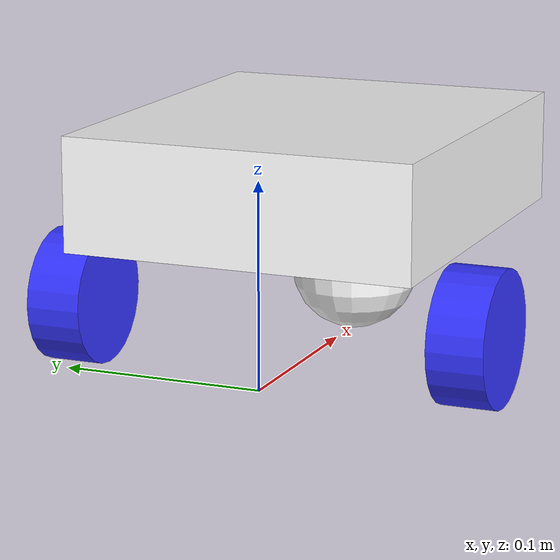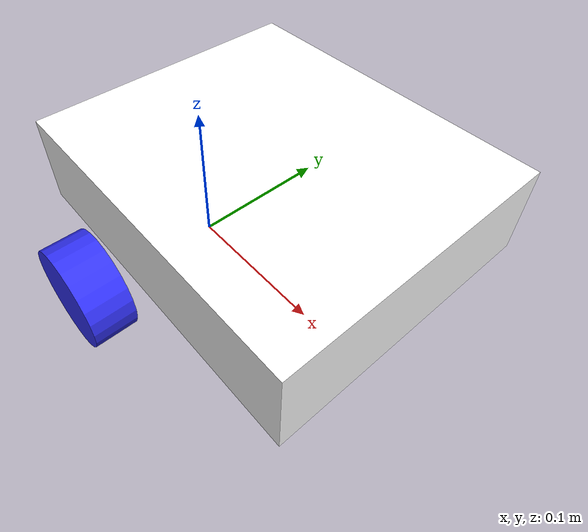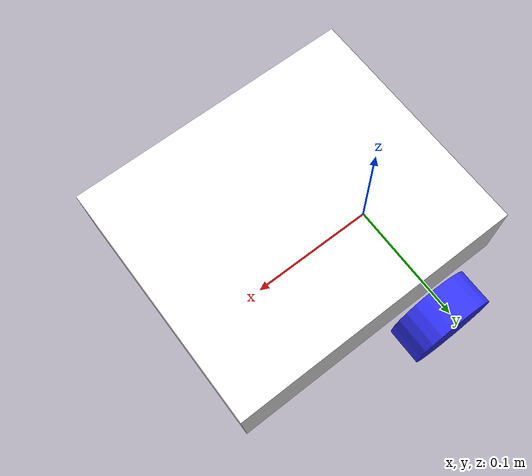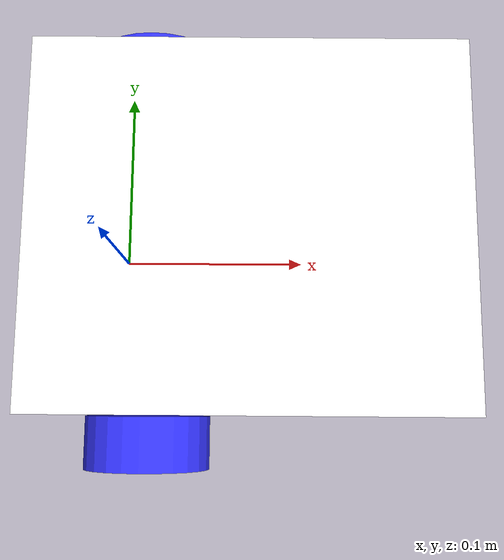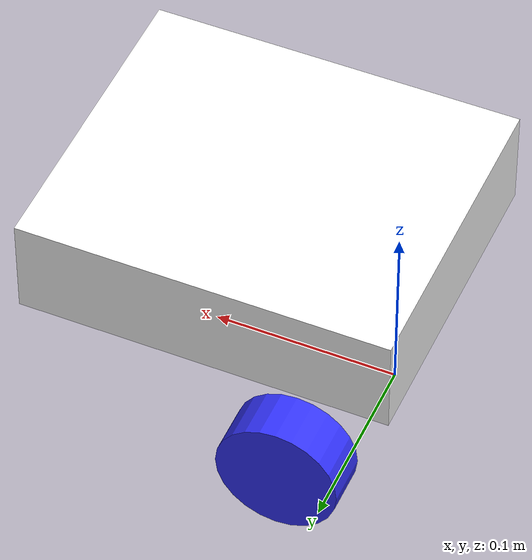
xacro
<?xml version="1.0"?>
<robot xmlns:xacro="http://www.ros.org/wiki/xacro">

    <xacro:include filename="inertial_macros.xacro"/>

    <material name="white">
        <color rgba="1 1 1 1"/>
    </material>

    <material name="orange">
        <color rgba="1 0.3 0.1 1"/>
    </material>

    <material name="blue">
        <color rgba="0.2 0.2 1 1"/>
    </material>

    <material name="red">
        <color rgba="1 0 0 1"/>
    </material>

    <material name="black">
        <color rgba="0 0 0 1"/>
    </material>

    <!-- BASE LINK -->

    <link name="base_link">

    </link>

    <!-- BASE_FOOTPRINT_LINK -->

    <joint name="base_footprint_joint" type="fixed">
        <parent link="base_link"/>
        <child link="base_footprint"/>
        <origin xyz="0 0 0" rpy="0 0 0"/>
    </joint>

    <link name="base_footprint">
    </link>

    <!-- CHASSIS LINK -->

    <joint name="chassis_joint" type="fixed">
        <parent link="base_link"/>
        <child link="chassis"/>
        <origin xyz="-0.1 0 0"/>
    </joint>

    <link name="chassis">
        <visual>
            <origin xyz="0.17 0 0.0925"/>
            <geometry>
                <box size="0.2 0.17 0.055"/>
            </geometry>
            <material name="white"/>
        </visual>
        <collision>
            <origin xyz="0.17 0 0.0925"/>
            <geometry>
                <box size="0.2 0.17 0.055"/>
            </geometry>
        </collision>
        <xacro:inertial_box mass="0.5" x="0.2" y="0.17" z="0.1">
            <origin xyz="0.17 0 0.0925" rpy="0 0 0"/>
        </xacro:inertial_box>
    </link>

    <gazebo reference="chassis">
        <material>Gazebo/Orange</material>
    </gazebo>

    <!-- LEFT WHEEL LINK -->

    <joint name="left_wheel_joint" type="continuous">
        <parent link="base_link"/>
        <child link="left_wheel"/>
        <origin xyz="0.0175 0.1 0.0325" rpy="-${pi/2} 0 0"/>
        <axis xyz="0 0 1"/>
    </joint>

    <link name="left_wheel">
        <visual>
            <geometry>
                <cylinder radius="0.0325" length="0.027"/>
            </geometry>
            <material name="blue"/>
        </visual>
        <collision>
            <geometry>
                <cylinder radius="0.0325" length="0.027"/>
            </geometry>
        </collision>
        <xacro:inertial_cylinder mass="0.1" length="0.027" radius="0.0325">
            <origin xyz="0 0 0" rpy="0 0 0"/>
        </xacro:inertial_cylinder>
    </link>

    <gazebo reference="left_wheel">
        <material>Gazebo/Blue</material>
    </gazebo>

    <!-- RIGHT WHEEL LINK -->

    <joint name="right_wheel_joint" type="continuous">
        <parent link="base_link"/>
        <child link="right_wheel"/>
        <origin xyz="0.0175 -0.1 0.0325" rpy="${pi/2} 0 0"/>
        <axis xyz="0 0 -1"/>
    </joint>

    <link name="right_wheel">
        <visual>
            <geometry>
                <cylinder radius="0.0325" length="0.027"/>
            </geometry>
            <material name="blue"/>
        </visual>
        <collision>
            <geometry>
                <cylinder radius="0.0325" length="0.027"/>
            </geometry>
        </collision>
        <xacro:inertial_cylinder mass="0.1" length="0.027" radius="0.0325">
            <origin xyz="0 0 0" rpy="0 0 0"/>
        </xacro:inertial_cylinder>
    </link>

    <gazebo reference="right_wheel">
        <material>Gazebo/Blue</material>
    </gazebo>

    <!-- CASTER WHEEL LINK -->

    <joint name="caster_wheel_joint" type="fixed">
        <parent link="chassis"/>
        <child link="caster_wheel"/>
        <origin xyz="0.225 0 0.0325"/>
    </joint>

    <link name="caster_wheel">
        <visual>
            <geometry>
                <sphere radius="0.0325"/>
            </geometry>
            <material name="white"/>
        </visual>
        <collision>
            <geometry>
                <sphere radius="0.0325"/>
            </geometry>
        </collision>
        <xacro:inertial_sphere mass="0.1" radius="0.0325">
            <origin xyz="0 0 0" rpy="0 0 0"/>
        </xacro:inertial_sphere>
    </link>

    <gazebo reference="caster_wheel">
        <material>Gazebo/Black</material>
        <mu1 value="0.001"/>
        <mu2 value="0.001"/>
    </gazebo>

    <!-- เพิ่ม IMU link ใน URDF -->
    <link name="imu_link">
    <visual>
        <geometry>
        <box size="0.02 0.02 0.01"/>
        </geometry>
        <material name="red"/>
    </visual>
    </link>

    <joint name="imu_joint" type="fixed">
    <parent link="chassis"/>
    <child link="imu_link"/>
    <origin xyz="0.15 0 0.095" rpy="0 0 0"/>
    </joint>

</robot>
